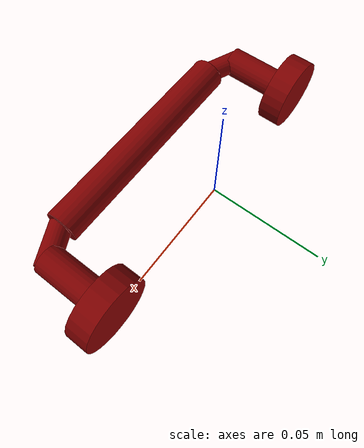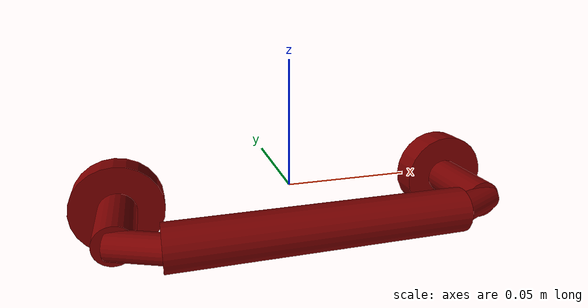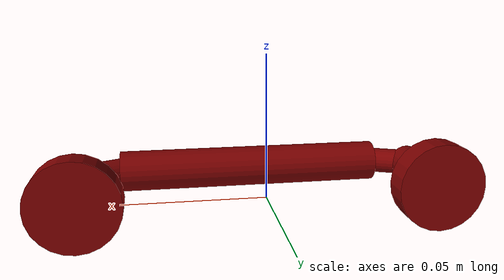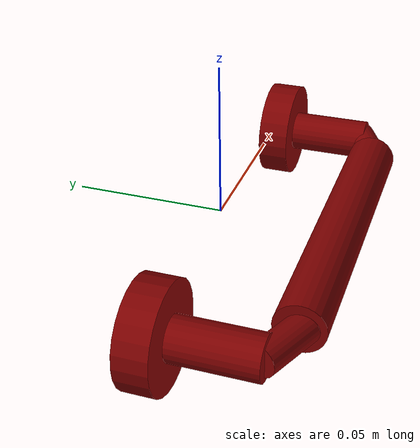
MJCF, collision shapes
<?xml version="1.0" ?>
<mujoco model="irregularity_handle">
    <compiler angle="radian"/>
    <asset>
        <mesh file="visuals/CabinetHandle001.obj" name="mesh"/>
        <texture file="visuals/T_CabinetHandle001_BC001.png" name="tex" type="2d"/>
        <material name="mat" rgba="1 1 1 1" texture="tex"/>
    </asset>
    <default>
        <default class="visual">
            <geom conaffinity="0" contype="0" group="1" type="mesh"/>
        </default>
        <default class="collision">
            <geom group="0" rgba="0.5 0 0 0.5"/>
        </default>
    </default>
    <worldbody>
        <body>
            <body name="object" >
                <geom mesh="mesh" type="mesh" solimp="0.998 0.998 0.001" solref="0.001 1" density="100" friction="0.95 0.3 0.1" class="visual" material="mat" />
                <geom class="collision" type="cylinder" pos="0.06546153873205185 -0.0033661506604403257 0.0" size="0.016513565555214882 0.005149620119482279" quat="0.7071067094802856 -0.7071068286895752 1.5700929612083792e-16 2.2148510003422914e-23" name="handle_connector_top"/>
                <geom class="collision" type="cylinder" pos="-0.06533577293157578 -0.0033661506604403257 0.0" size="0.016513565555214882 0.005149620119482279" quat="0.7071067094802856 -0.7071068286895752 1.5700929612083792e-16 2.2148510003422914e-23" name="handle_connector_bottom"/>
                <geom class="collision" type="cylinder" pos="-0.06533577293157578 -0.02166781947016716 0.0" size="0.006821904797106981 0.013271280564367771" quat="0.7071067094802856 -0.7071068286895752 1.5700929612083792e-16 2.2148510003422914e-23" name="handle_part4"/>
                <geom class="collision" type="cylinder" pos="0.06494592875242233 -0.02166781947016716 -1.3418367805773102e-10" size="0.006821904797106981 0.013271280564367771" quat="0.7071067094802856 -0.7071068286895752 1.5700929612083792e-16 2.2148510003422914e-23" name="handle_part3"/>
                <geom class="collision" type="cylinder" pos="0.05962599813938141 -0.036835283041000366 0.0" size="0.004990971181541681 0.00970939639955759" quat="0.6001121401786804 -0.60011225938797 0.37398576736450195 -0.3739857077598572" name="handle_part2"/>
                <geom class="collision" type="cylinder" pos="-0.05809161439538002 -0.03728804364800453 0.0" size="0.004990971181541681 0.00970939639955759" quat="0.3871384263038635 -0.3871384561061859 0.5917126536369324 -0.5917125940322876" name="handle_part1"/>
                <geom class="collision" type="cylinder" pos="0.00031443097395822406 -0.03989141434431076 0.0" size="0.007921461015939713 0.051605936139822006" quat="0.4999999701976776 -0.5 -0.5 0.5" name="handle"/>
            </body>
        </body>
    </worldbody>
    <actuator/>
</mujoco>
